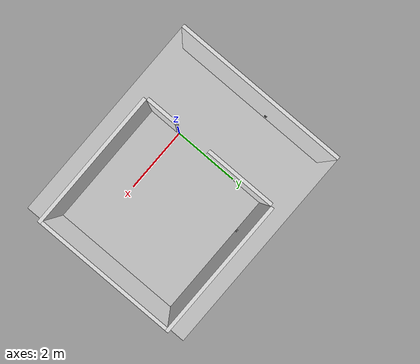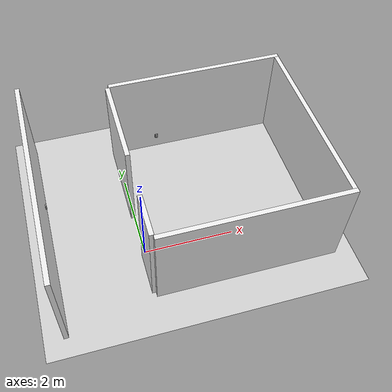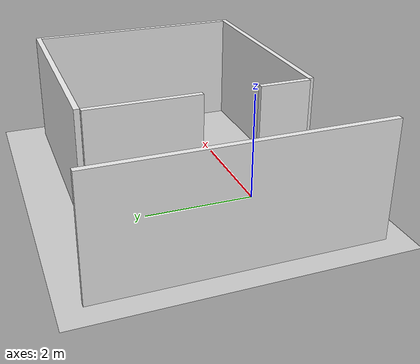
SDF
<sdf version="1.6">
 <world name="default">
  <include><uri>model://ground_plane</uri></include>
  <model name="walls">
   <static>true</static>
   <link name="wall_1">
    <collision name="wall_1_collision">
     <pose>-0.03 1.98 1.08 0 0 0</pose>
     <geometry><box><size>0.1 2.03 2.16</size></box></geometry>
    </collision>
    <visual name="wall_1_visual">
     <pose>-0.03 1.98 1.08 0 0 0</pose>
     <geometry><box><size>0.1 2.03 2.16</size></box></geometry>
     <material>
      <script><uri>file://media/materials/scripts/Gazebo.material</uri><name>Gazebo/White</name></script>
     </material>
    </visual>
   </link>
   <link name="wall_2">
    <collision name="wall_2_collision">
     <pose>-0.03 -0.53 1.08 0 0 0</pose>
     <geometry><box><size>0.1 0.93 2.16</size></box></geometry>
    </collision>
    <visual name="wall_2_visual">
     <pose>-0.03 -0.53 1.08 0 0 0</pose>
     <geometry><box><size>0.1 0.93 2.16</size></box></geometry>
     <material>
      <script><uri>file://media/materials/scripts/Gazebo.material</uri><name>Gazebo/White</name></script>
     </material>
    </visual>
   </link>
   <link name="wall_3">
    <collision name="wall_3_collision">
     <pose>2 3.05 1.08 0 0 0</pose>
     <geometry><box><size>4 0.1 2.16</size></box></geometry>
    </collision>
    <visual name="wall_3_visual">
     <pose>2 3.05 1.08 0 0 0</pose>
     <geometry><box><size>4 0.1 2.16</size></box></geometry>
     <material>
      <script><uri>file://media/materials/scripts/Gazebo.material</uri><name>Gazebo/White</name></script>
     </material>
    </visual>
   </link>
   <link name="wall_4">
    <collision name="wall_4_collision">
     <pose>2 -1.05 1.08 0 0 0</pose>
     <geometry><box><size>4.0 0.1 2.16</size></box></geometry>
    </collision>
    <visual name="wall_4_visual">
     <pose>2 -1.05 1.08 0 0 0</pose>
     <geometry><box><size>4.0 0.1 2.16</size></box></geometry>
     <material>
      <script><uri>file://media/materials/scripts/Gazebo.material</uri><name>Gazebo/White</name></script>
     </material>
    </visual>
   </link>
   <link name="wall_5">
    <collision name="wall_5_collision">
     <pose>3.95 1 1.08 0 0 0</pose>
     <geometry><box><size>0.1 4 2.16</size></box></geometry>
    </collision>
    <visual name="wall_5_visual">
     <pose>3.95 1 1.08 0 0 0</pose>
     <geometry><box><size>0.1 4 2.16</size></box></geometry>
     <material>
      <script><uri>file://media/materials/scripts/Gazebo.material</uri><name>Gazebo/White</name></script>
     </material>
    </visual>
   </link>
   <link name="wall_6">
    <collision name="wall_6_collision">
     <pose>-1.95 1.0 1.08 0 0 0</pose>
     <geometry><box><size>0.1 5 2.16</size></box></geometry>
    </collision>
    <visual name="wall_6_visual">
     <pose>-1.95 1 1.08 0 0 0</pose>
     <geometry><box><size>0.1 5 2.16</size></box></geometry>
     <material>
      <script><uri>file://media/materials/scripts/Gazebo.material</uri><name>Gazebo/White</name></script>
     </material>
    </visual>
   </link>
  </model>
  <model name="socket">
   <static>true</static>
   <link name="socket_1">
    <visual name="visual_socket_1">
     <pose>-1.88 1.5 0.4 1.57 0 1.57</pose>
     <geometry><mesh><uri>file://media/materials/obj/socket.obj</uri></mesh></geometry>
     <material>
      <script><uri>file://media/materials/scripts/Gazebo.material</uri><name>Gazebo/Gray</name></script>
     </material>
    </visual>
    <collision name="collision_socket_1">
     <pose>-1.88 1.5 0.4 1.57 0 1.57</pose>
     <geometry><mesh><uri>file://media/materials/obj/socket.obj</uri></mesh></geometry>
    </collision>
   </link>
   <link name="socket_2">
    <visual name="visual_socket_2">
     <pose>1.0 2.98 0.4 1.57 0 0</pose>
     <geometry><mesh><uri>file://media/materials/obj/socket.obj</uri></mesh></geometry>
     <material>
      <script><uri>file://media/materials/scripts/Gazebo.material</uri><name>Gazebo/Gray</name></script>
     </material>
    </visual>
    <collision name="collision_socket_2">
     <pose>1.0 2.98 0.4 1.57 0 0</pose>
     <geometry><mesh><uri>file://media/materials/obj/socket.obj</uri></mesh></geometry>
    </collision>
   </link>
  </model>
  <light name="light0" type="point">
   <cast_shadows>0</cast_shadows>
   <diffuse>1 1 1 1</diffuse>
   <specular>0.1 0.1 0.1 1</specular>
   <pose>2 1 3 0 0 0</pose>
   <direction>0 0 -1</direction>
   <attenuation><range>10</range><linear>0</linear><constant>1</constant></attenuation>
  </light>
  <light name="light1" type="point">
   <cast_shadows>0</cast_shadows>
   <diffuse>1 1 1 1</diffuse>
   <specular>0.3 0.3 0.3 1</specular>
   <pose>-1.0 1 3 0 0 0</pose>
   <direction>0 0 -1</direction>
   <attenuation><range>10</range><linear>0</linear><constant>0.5</constant></attenuation>
  </light>
  <physics type="ode">
   <max_step_size>0.001</max_step_size>
   <real_time_factor>1</real_time_factor>
   <real_time_update_rate>1000</real_time_update_rate>
   <ode>
    <solver><type>quick</type><iters>1000</iters><sor>1.3</sor></solver>
    <constraints>
     <cfm>0</cfm>
     <erp>0.2</erp>
     <contact_max_correcting_vel>100</contact_max_correcting_vel>
     <contact_surface_layer>0.001</contact_surface_layer>
    </constraints>
   </ode>
  </physics>
 </world>
</sdf>
